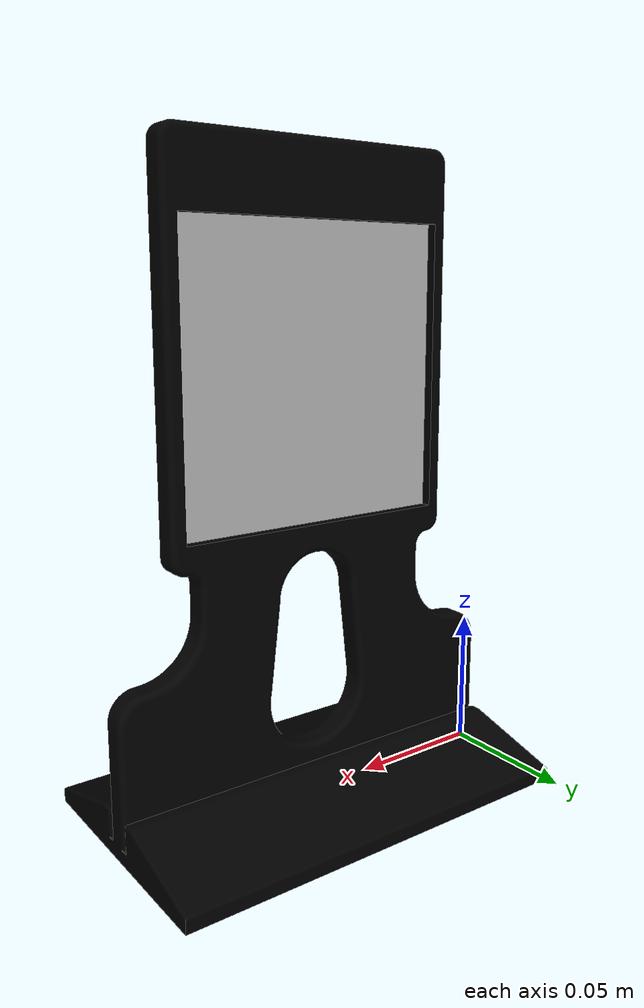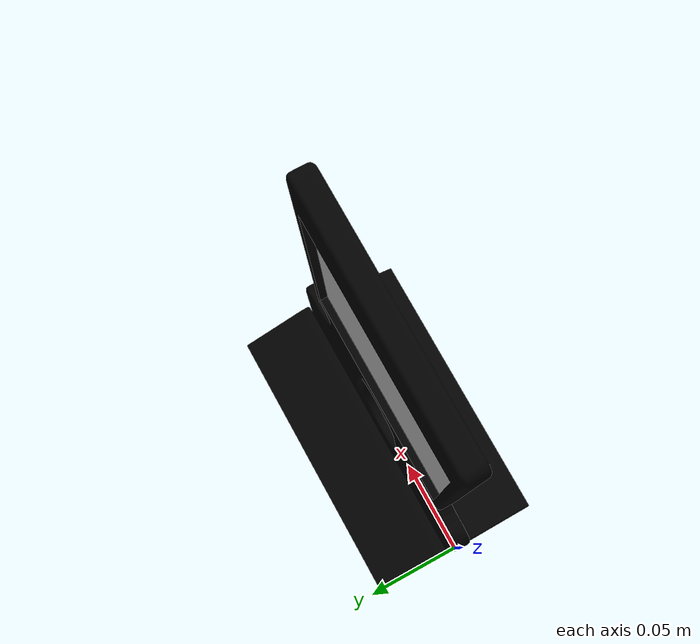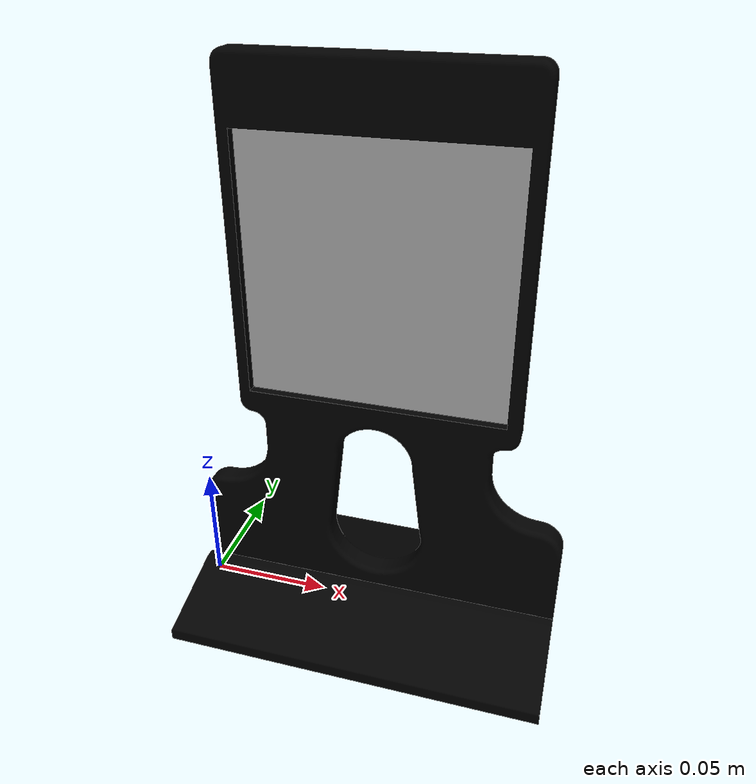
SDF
<?xml version="1.0" ?>
<sdf version="1.6">
  <model name="toten_150">
    <static>true</static>
    <link name="box">
      <pose>0 0 0 0 0 0</pose>
      <collision name="collision">
        <geometry>
          <mesh>
            <uri>model://Creepers/toten_150/materials/textures/toten.dae</uri>
            <scale>0.001 0.001 0.001</scale>
          </mesh>
        </geometry>
      </collision>
      <visual name='visual'>
        <pose frame=''>0 0 0 0 0 0</pose>
        <geometry>
          <mesh>
            <uri>model://Creepers/toten_150/materials/textures/toten.dae</uri>
            <scale>0.001 0.001 0.001</scale>
          </mesh>
        </geometry>
        <transparency>0</transparency>
        <cast_shadows>1</cast_shadows>
      </visual>
    </link>
  </model>
</sdf>
